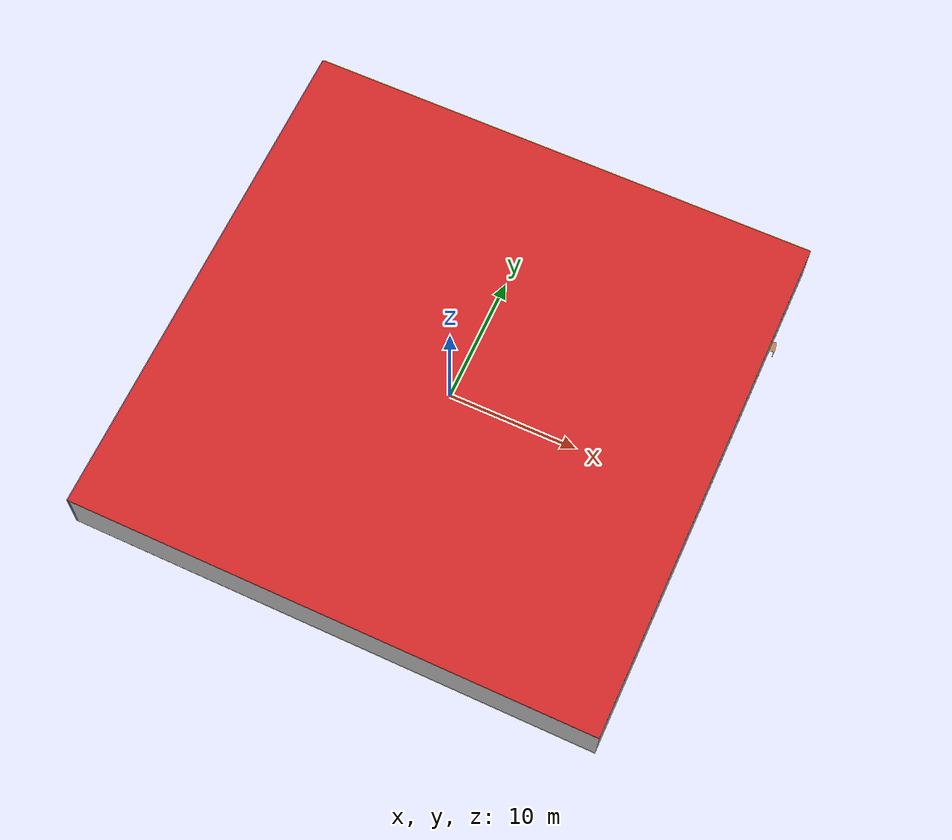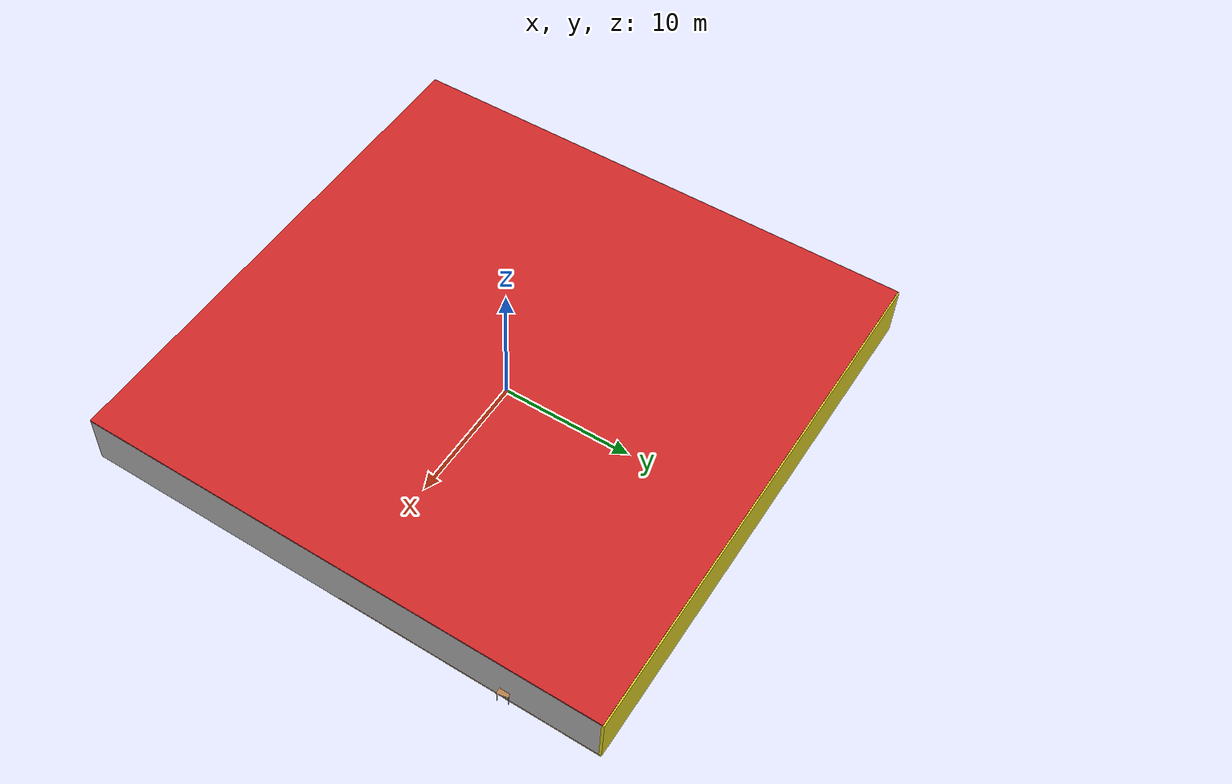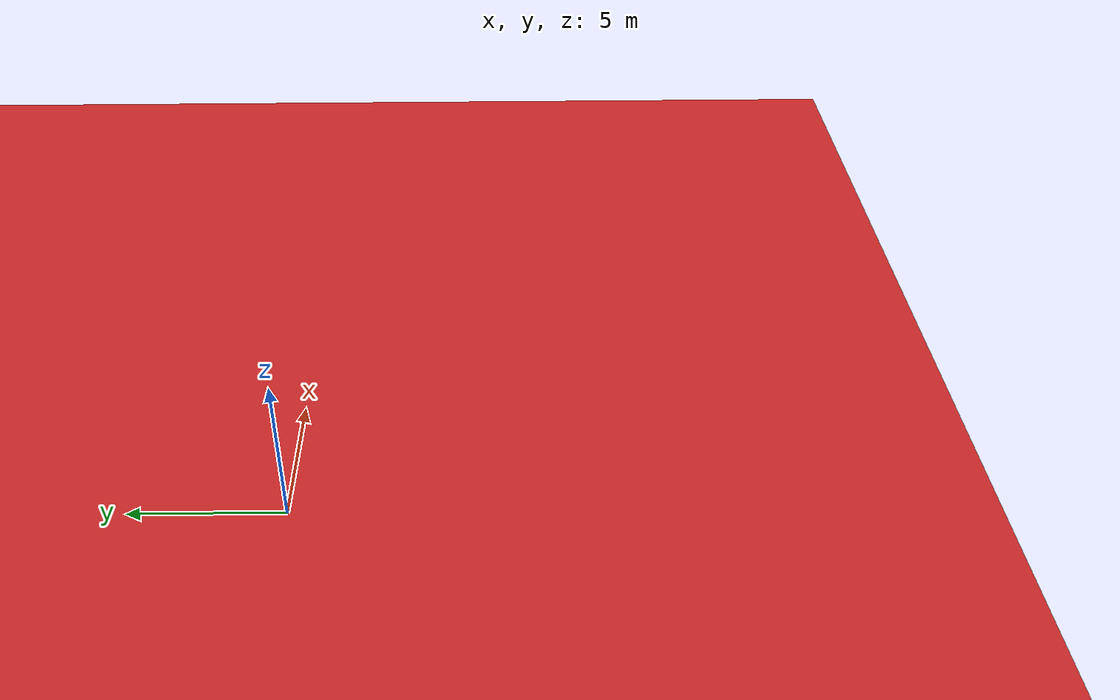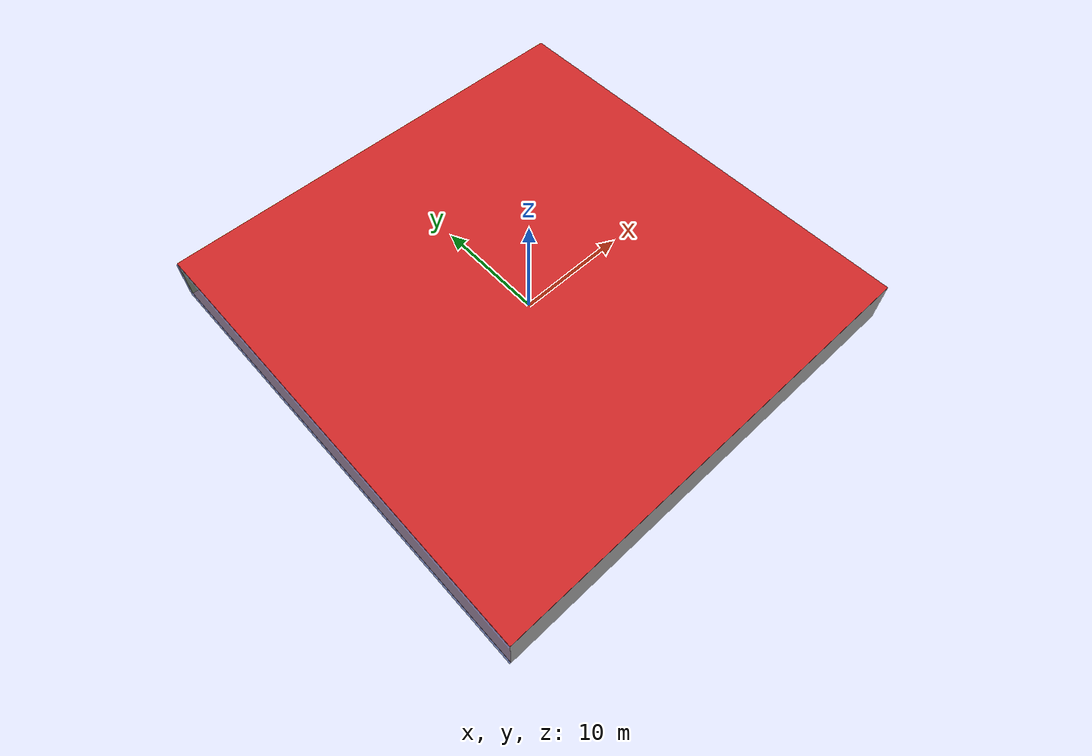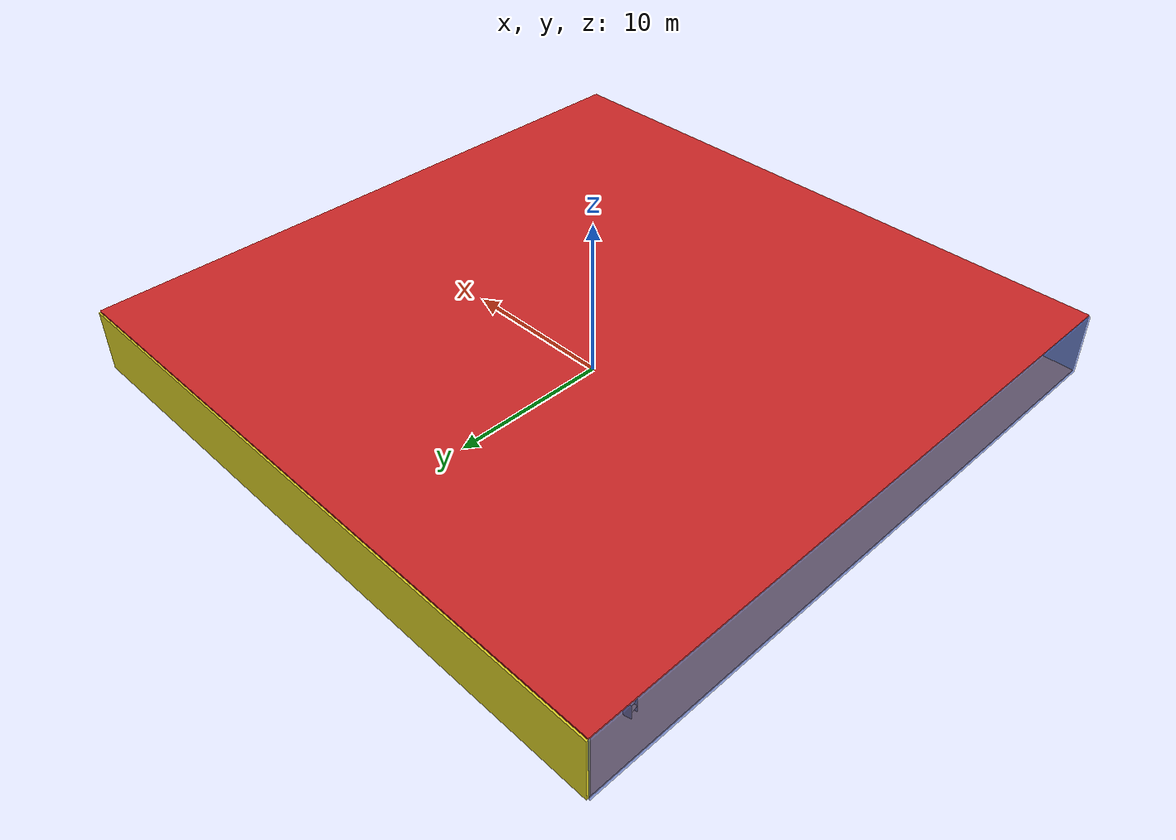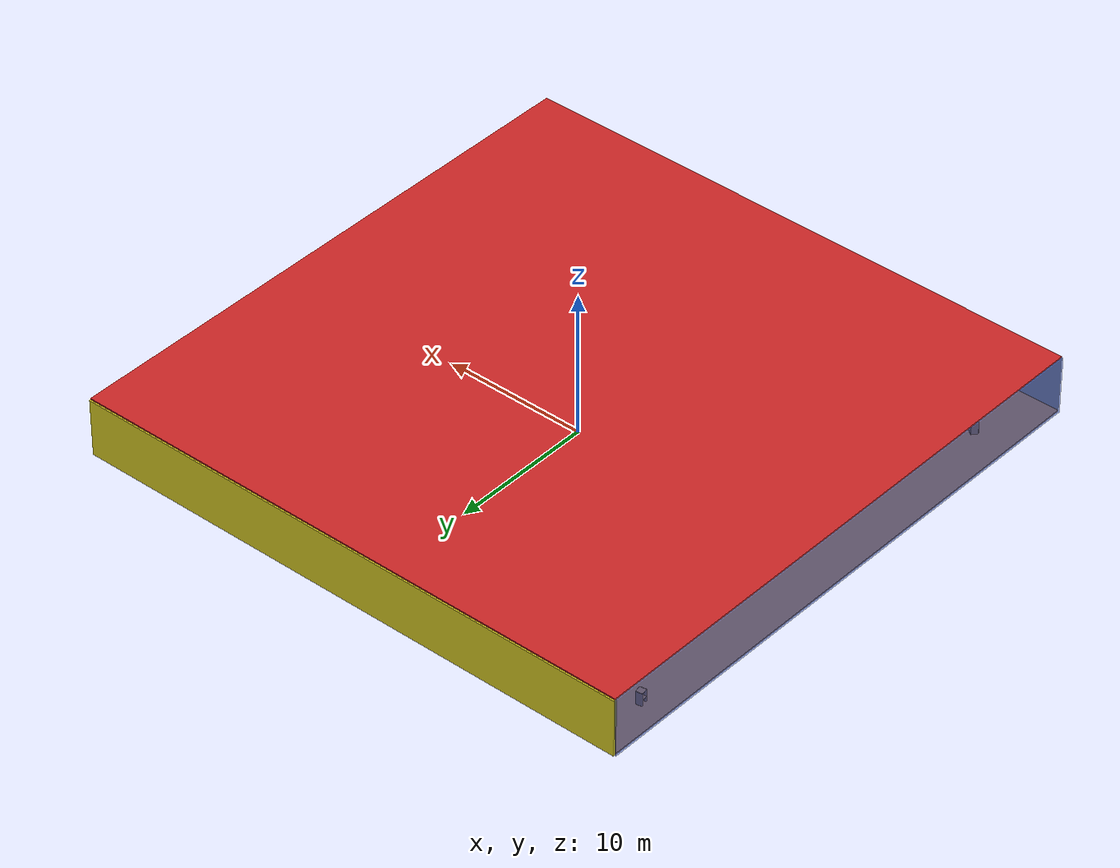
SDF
<sdf version="1.4">
 <world name="default">
  <physics type="ode">
   <max_step_size>0.001</max_step_size>
   <real_time_factor>1</real_time_factor>
   <real_time_update_rate>1000</real_time_update_rate>
   <gravity>0 0 -9.8</gravity>
  </physics>
  <scene><ambient>0.4 0.4 0.4 1</ambient><background>0.7 0.7 0.7 1</background><shadows>1</shadows></scene>
  <model name="Surrounding">
   <static>1</static>
   <link name="Ceiling">
    <collision name="Ceiling_Collision"><geometry><box><size>40 40 0.1</size></box></geometry></collision>
    <visual name="Ceiling_Visual">
     <geometry><box><size>40 40 0.1</size></box></geometry>
     <material>
      <script><uri>file://media/materials/scripts/gazebo.material</uri><name>Gazebo/Red</name></script>
     </material>
    </visual>
    <pose>0 0 4.05 0 0 0</pose>
   </link>
   <link name="Wall_South">
    <collision name="Wall_South_Collision">
     <geometry><box><size>40 0 4</size></box></geometry>
     <pose>0 0 2 0 -0 0</pose>
    </collision>
    <visual name="Wall_South_Visual">
     <pose>0 0 2 0 -0 0</pose>
     <geometry><box><size>40 0 4</size></box></geometry>
     <material>
      <script><uri>file://media/materials/scripts/gazebo.material</uri><name>Gazebo/LightOn</name></script>
     </material>
    </visual>
    <velocity_decay><linear>0</linear><angular>0</angular></velocity_decay>
    <pose>0 -20 0 0 -0 0</pose>
   </link>
   <link name="Wall_East">
    <collision name="Wall_21_Collision">
     <geometry><box><size>40 0 4</size></box></geometry>
     <pose>0 0 2 0 -0 0</pose>
    </collision>
    <visual name="Wall_21_Visual">
     <pose>0 0 2 0 -0 0</pose>
     <geometry><box><size>40 0 4</size></box></geometry>
     <material>
      <script><uri>file://media/materials/scripts/gazebo.material</uri><name>Gazebo/JointAnchor</name></script>
     </material>
    </visual>
    <velocity_decay><linear>0</linear><angular>0</angular></velocity_decay>
    <pose>20 0 0 0 -0 1.5708</pose>
   </link>
   <link name="Wall_North">
    <collision name="Wall_22_Collision">
     <geometry><box><size>40 0.2 4</size></box></geometry>
     <pose>0 0 2 0 -0 0</pose>
    </collision>
    <visual name="Wall_22_Visual">
     <pose>0 0 2 0 -0 0</pose>
     <geometry><box><size>40 0.2 4</size></box></geometry>
     <material>
      <script><uri>file://media/materials/scripts/gazebo.material</uri><name>Gazebo/YellowGlow</name></script>
     </material>
    </visual>
    <velocity_decay><linear>0</linear><angular>0</angular></velocity_decay>
    <pose>0 20 0 0 -0 0</pose>
   </link>
   <link name="Wall_West">
    <collision name="Wall_23_Collision">
     <geometry><box><size>40 0.2 4</size></box></geometry>
     <pose>0 0 2 0 -0 0</pose>
    </collision>
    <visual name="Wall_23_Visual">
     <pose>0 0 2 0 -0 0</pose>
     <geometry><box><size>40 0.2 4</size></box></geometry>
     <material>
      <script><uri>file://media/materials/scripts/gazebo.material</uri><name>Gazebo/BlueTransparent</name></script>
     </material>
    </visual>
    <velocity_decay><linear>0</linear><angular>0</angular></velocity_decay>
    <pose>-20 0 0 0 0 -1.5708</pose>
   </link>
   <link name="Ground_link">
    <collision name="collision">
     <pose>0 0 .05 0 -0 0</pose>
     <geometry><box><size>40 40 0.1</size></box></geometry>
    </collision>
    <visual name="visual">
     <pose>0 0 .05 0 -0 0</pose>
     <geometry><box><size>40 40 0.1</size></box></geometry>
     <material>
      <script><uri>file://media/materials/scripts/gazebo.material</uri><name>Gazebo/Wood</name></script>
     </material>
    </visual>
   </link>
   <static>1</static>
  </model>
  <spherical_coordinates>
   <surface_model>EARTH_WGS84</surface_model>
   <latitude_deg>0</latitude_deg>
   <longitude_deg>0</longitude_deg>
   <elevation>0</elevation>
   <heading_deg>0</heading_deg>
  </spherical_coordinates>
  <light name="lightball_0" type="diffuse">
   <diffuse>0.8 0.8 0.8 1</diffuse>
   <specular>0.2 0.2 0.2 1</specular>
   <attenuation>
    <range>100</range>
    <constant>0.7</constant>
    <linear>0.01</linear>
    <quadratic>0.001</quadratic>
   </attenuation>
   <direction>-0.5 0.1 -0.9</direction>
   <pose>-18.2919454051 8.833476565 1.22197593995 0 0 0</pose>
  </light>
  <include><uri>model://cabinet</uri><pose>-17.4940789951 -15.1272093776 0 0 0 2.45475456887</pose></include>
  <include><uri>model://cabinet</uri><pose>-18.3422905861 15.8440123784 0 0 0 0.213257735772</pose></include>
  <include><uri>model://table</uri><pose>-13.4463953667 7.65013889585 0 0 0 1.06817635739</pose></include>
  <include>
   <uri>model://textured_shapes</uri>
   <pose>-11.0911877211 -4.97302092619 0 0 0 1.60916564767</pose>
  </include>
  <include><uri>model://cabinet</uri><pose>-8.83679870987 -5.5779721844 0 0 0 1.21048915072</pose></include>
  <include><uri>model://cabinet</uri><pose>-2.14905161816 19.1640485742 0 0 0 1.38742048378</pose></include>
  <include>
   <uri>model://robocup_3Dsim_goal</uri>
   <pose>0.752289308306 -0.0005653101118 0 0 0 2.32657594931</pose>
  </include>
  <include>
   <uri>model://robocup_3Dsim_goal</uri>
   <pose>0.646421663873 10.4847682404 0 0 0 3.09077671788</pose>
  </include>
  <include><uri>model://cabinet</uri><pose>-0.0925691894279 13.393188226 0 0 0 2.44315498825</pose></include>
  <include><uri>model://cabinet</uri><pose>3.81547790164 -12.6443794111 0 0 0 2.662411148</pose></include>
  <include><uri>model://cabinet</uri><pose>3.78827103022 -7.89161802485 0 0 0 1.90116456341</pose></include>
  <include><uri>model://table</uri><pose>3.36295961786 16.1649534944 0 0 0 1.74359301999</pose></include>
  <include>
   <uri>model://robocup_3Dsim_goal</uri>
   <pose>7.04291513539 -12.1573747652 0 0 0 1.18399690641</pose>
  </include>
  <include>
   <uri>model://robocup_3Dsim_goal</uri>
   <pose>5.69626264873 -7.74489157931 0 0 0 0.265127230396</pose>
  </include>
  <include><uri>model://cabinet</uri><pose>5.76496669269 8.62247924299 0 0 0 0.863914030624</pose></include>
  <include>
   <uri>model://textured_shapes</uri>
   <pose>13.4371778469 -11.5322156271 0 0 0 1.62448564658</pose>
  </include>
  <include>
   <uri>model://construction_cone</uri>
   <pose>13.2778138315 3.57032629073 0 0 0 1.08150007279</pose>
  </include>
  <include>
   <uri>model://robocup_3Dsim_goal</uri>
   <pose>15.6507268104 7.22548097851 0 0 0 0.168213080219</pose>
  </include>
  <include><uri>model://table</uri><pose>18.3258350352 -16.4753540829 0 0 0 0.642417727561</pose></include>
  <include><uri>model://table</uri><pose>19.6136564425 13.0206428378 0 0 0 0.194976511457</pose></include>
  <include>
   <uri>model://robocup_3Dsim_goal</uri>
   <pose>18.7582823888 15.0113104251 0 0 0 0.884821602981</pose>
  </include>
 </world>
</sdf>

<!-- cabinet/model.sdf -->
<sdf version="1.5">
  <model name="cabinet">
    <static>true</static>
    <link name="cabinet_bottom_plate">
      <inertial>
        <pose>0 0 -1 0 0 0</pose>
        <inertia>
          <ixx>2.050000</ixx>
          <ixy>0</ixy>
          <ixz>0</ixz>
          <iyy>2.050000</iyy>
          <iyz>0</iyz>
          <izz>2.050000</izz>
        </inertia>
        <mass>25.000000</mass>
      </inertial>
      <collision name="cabinet_bottom_plate_geom">
        <pose>0 0 0.010000 0 0 0</pose>
        <geometry>
          <box>
            <size>0.450000 0.450000 0.020000</size>
          </box>
        </geometry>
      </collision>
      <visual name="cabinet_bottom_plate_geom_visual">
        <pose>0 0 0.010000 0 0 0</pose>
        <geometry>
          <box>
            <size>0.450000 0.450000 0.020000</size>
          </box>
        </geometry>
        <material>
          <script>
            <uri>model://media/materials/scripts/gazebo.material</uri>
            <name>Gazebo/Wood</name>
          </script>
        </material>
      </visual>
      <collision name="cabinet_bottom_plate_geom_cabinet_back_plate">
        <pose>0.235000 0 0.510000 0 0 0</pose>
        <geometry>
          <box>
            <size>0.020000 0.450000 1.020000</size>
          </box>
        </geometry>
      </collision>
      <visual name="cabinet_bottom_plate_geom_cabinet_back_plate_visual">
        <pose>0.235000 0 0.510000 0 0 0</pose>
        <geometry>
          <box>
            <size>0.020000 0.450000 1.020000</size>
          </box>
        </geometry>
        <material>
          <script>
            <uri>model://media/materials/scripts/gazebo.material</uri>
            <name>Gazebo/Wood</name>
          </script>
        </material>
      </visual>
      <collision name="cabinet_bottom_plate_geom_cabinet_left_plate">
        <pose>0 0.235000 0.510000 0 0 0</pose>
        <geometry>
          <box>
            <size>0.450000 0.020000 1.020000</size>
          </box>
        </geometry>
      </collision>
      <visual name="cabinet_bottom_plate_geom_cabinet_left_plate_visual">
        <pose>0 0.235000 0.510000 0 0 0</pose>
        <geometry>
          <box>
            <size>0.450000 0.020000 1.020000</size>
          </box>
        </geometry>
        <material>
          <script>
            <uri>model://media/materials/scripts/gazebo.material</uri>
            <name>Gazebo/Wood</name>
          </script>
        </material>
      </visual>
      <collision name="cabinet_bottom_plate_geom_cabinet_middle_plate">
        <pose>0 0 0.510000 0 0 0</pose>
        <geometry>
          <box>
            <size>0.450000 0.450000 0.020000</size>
          </box>
        </geometry>
      </collision>
      <visual name="cabinet_bottom_plate_geom_cabinet_middle_plate_visual">
        <pose>0 0 0.510000 0 0 0</pose>
        <geometry>
          <box>
            <size>0.450000 0.450000 0.020000</size>
          </box>
        </geometry>
        <material>
          <script>
            <uri>model://media/materials/scripts/gazebo.material</uri>
            <name>Gazebo/Wood</name>
          </script>
        </material>
      </visual>
      <collision name="cabinet_bottom_plate_geom_cabinet_right_plate">
        <pose>0 -0.235000 0.510000 0 0 0</pose>
        <geometry>
          <box>
            <size>0.450000 0.020000 1.020000</size>
          </box>
        </geometry>
      </collision>
      <visual name="cabinet_bottom_plate_geom_cabinet_right_plate_visual">
        <pose>0 -0.235000 0.510000 0 0 0</pose>
        <geometry>
          <box>
            <size>0.450000 0.020000 1.020000</size>
          </box>
        </geometry>
        <material>
          <script>
            <uri>model://media/materials/scripts/gazebo.material</uri>
            <name>Gazebo/Wood</name>
          </script>
        </material>
      </visual>
      <collision name="cabinet_bottom_plate_geom_cabinet_top_plate">
        <pose>0 0 1.010000 0 0 0</pose>
        <geometry>
          <box>
            <size>0.450000 0.450000 0.020000</size>
          </box>
        </geometry>
      </collision>
      <visual name="cabinet_bottom_plate_geom_cabinet_top_plate_visual">
        <pose>0 0 1.010000 0 0 0</pose>
        <geometry>
          <box>
            <size>0.450000 0.450000 0.020000</size>
          </box>
        </geometry>
        <material>
          <script>
            <uri>model://media/materials/scripts/gazebo.material</uri>
            <name>Gazebo/Wood</name>
          </script>
        </material>
      </visual>
    </link>
  </model>
</sdf>

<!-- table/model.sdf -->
<sdf version="1.5">
  <model name="table">
    <static>true</static>
    <link name="link">
      <collision name="surface">
        <pose>0 0 1.0 0 0 0</pose>
        <geometry>
          <box>
            <size>1.5 0.8 0.03</size>
          </box>
        </geometry>
        <surface>
          <friction>
            <ode>
              <mu>0.6</mu>
              <mu2>0.6</mu2>
            </ode>
          </friction>
        </surface>
      </collision>
      <visual name="visual1">
        <pose>0 0 1.0 0 0 0</pose>
        <geometry>
          <box>
            <size>1.5 0.8 0.03</size>
          </box>
        </geometry>
        <material>
          <script>
            <uri>model://media/materials/scripts/gazebo.material</uri>
            <name>Gazebo/Wood</name>
          </script>
        </material>
      </visual>
      <collision name="front_left_leg">
        <pose>0.68 0.38 0.5 0 0 0</pose>
        <geometry>
          <cylinder>
            <radius>0.02</radius>
            <length>1.0</length>
          </cylinder>
        </geometry>
      </collision>
      <visual name="front_left_leg">
        <pose>0.68 0.38 0.5 0 0 0</pose>
        <geometry>
          <cylinder>
            <radius>0.02</radius>
            <length>1.0</length>
          </cylinder>
        </geometry>
        <material>
          <script>
            <uri>model://media/materials/scripts/gazebo.material</uri>
            <name>Gazebo/Grey</name>
          </script>
        </material>
      </visual>
      <collision name="front_right_leg">
        <pose>0.68 -0.38 0.5 0 0 0</pose>
        <geometry>
          <cylinder>
            <radius>0.02</radius>
            <length>1.0</length>
          </cylinder>
        </geometry>
      </collision>
      <visual name="front_right_leg">
        <pose>0.68 -0.38 0.5 0 0 0</pose>
        <geometry>
          <cylinder>
            <radius>0.02</radius>
            <length>1.0</length>
          </cylinder>
        </geometry>
        <material>
          <script>
            <uri>model://media/materials/scripts/gazebo.material</uri>
            <name>Gazebo/Grey</name>
          </script>
        </material>
      </visual>
      <collision name="back_right_leg">
        <pose>-0.68 -0.38 0.5 0 0 0</pose>
        <geometry>
          <cylinder>
            <radius>0.02</radius>
            <length>1.0</length>
          </cylinder>
        </geometry>
      </collision>
      <visual name="back_right_leg">
        <pose>-0.68 -0.38 0.5 0 0 0</pose>
        <geometry>
          <cylinder>
            <radius>0.02</radius>
            <length>1.0</length>
          </cylinder>
        </geometry>
        <material>
          <script>
            <uri>model://media/materials/scripts/gazebo.material</uri>
            <name>Gazebo/Grey</name>
          </script>
        </material>
      </visual>
      <collision name="back_left_leg">
        <pose>-0.68 0.38 0.5 0 0 0</pose>
        <geometry>
          <cylinder>
            <radius>0.02</radius>
            <length>1.0</length>
          </cylinder>
        </geometry>
      </collision>
      <visual name="back_left_leg">
        <pose>-0.68 0.38 0.5 0 0 0</pose>
        <geometry>
          <cylinder>
            <radius>0.02</radius>
            <length>1.0</length>
          </cylinder>
        </geometry>
        <material>
          <script>
            <uri>model://media/materials/scripts/gazebo.material</uri>
            <name>Gazebo/Grey</name>
          </script>
        </material>
      </visual>
    </link>
  </model>
</sdf>

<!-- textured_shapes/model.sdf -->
<sdf version="1.6">
  <model name="textured_shapes">
    <pose>0 0 0.5 0 0 0</pose>
    <link name="box">
      <pose>0 -1.5 0 0 0 0</pose>
      <collision name="collision">
        <geometry>
          <box>
            <size>1 1 1</size>
          </box>
        </geometry>
      </collision>
      <visual name="visual">
        <geometry>
          <box>
            <size>1 1 1</size>
          </box>
        </geometry>
        <material>
          <script>
            <uri>model://../model_source/models/textured_shapes/materials/scripts</uri>
            <uri>model://../model_source/models/textured_shapes/materials/textures</uri>
            <name>TexturedShape/Squares</name>
          </script>
        </material>
      </visual>
    </link>
    <link name="sphere">
      <collision name="collision">
        <geometry>
          <sphere>
            <radius>0.5</radius>
          </sphere>
        </geometry>
      </collision>
      <visual name="visual">
        <geometry>
          <sphere>
            <radius>0.5</radius>
          </sphere>
        </geometry>
        <material>
          <script>
            <uri>model://../model_source/models/textured_shapes/materials/scripts</uri>
            <uri>model://../model_source/models/textured_shapes/materials/textures</uri>
            <name>TexturedShape/Squares</name>
          </script>
        </material>
      </visual>
    </link>
    <link name="cylinder">
      <pose>0 1.5 0 0 0 0</pose>
      <collision name="collision">
        <geometry>
          <cylinder>
            <radius>0.5</radius>
            <length>1</length>
          </cylinder>
        </geometry>
      </collision>
      <visual name="visual">
        <geometry>
          <cylinder>
            <radius>0.5</radius>
            <length>1</length>
          </cylinder>
        </geometry>
        <material>
          <script>
            <uri>model://../model_source/models/textured_shapes/materials/scripts</uri>
            <uri>model://../model_source/models/textured_shapes/materials/textures</uri>
            <name>TexturedShape/Squares</name>
          </script>
        </material>
      </visual>
    </link>
  </model>
</sdf>

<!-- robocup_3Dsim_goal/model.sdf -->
<sdf version="1.5">
  <model name="robocup_3d_goal">
    <static>true</static>
    <link name="left_post">
      <pose>0 1.05 0.45 0 0 0</pose>
      <collision name="collision">
        <geometry>
          <cylinder>
            <radius>0.05</radius>
            <length>0.9</length>
          </cylinder>
        </geometry>
      </collision>
      <visual name="visual">
        <geometry>
          <cylinder>
            <radius>0.05</radius>
            <length>0.9</length>
          </cylinder>
        </geometry>
        <material>
          <script>
            <uri>file://media/materials/scripts/gazebo.material</uri>
            <name>Gazebo/ZincYellow</name>
          </script>
        </material>
      </visual>
    </link>
    <link name="left_support_horiz_lower">
      <pose>0.30 1.05 0.01 0 0 0</pose>
      <collision name="collision">
        <geometry>
          <box>
            <size>0.50 0.02 0.02</size>
          </box>
        </geometry>
      </collision>
      <visual name="visual">
        <geometry>
          <box>
            <size>0.50 0.02 0.02</size>
          </box>
        </geometry>
        <material>
          <script>
            <uri>file://media/materials/scripts/gazebo.material</uri>
            <name>Gazebo/White</name>
          </script>
        </material>
      </visual>
    </link>
    <link name="left_support_horiz_upper">
      <pose>0.30 1.05 0.79 0 0 0</pose>
      <collision name="collision">
        <geometry>
          <box>
            <size>0.50 0.02 0.02</size>
          </box>
        </geometry>
      </collision>
      <visual name="visual">
        <geometry>
          <box>
            <size>0.50 0.02 0.02</size>
          </box>
        </geometry>
        <material>
          <script>
            <uri>file://media/materials/scripts/gazebo.material</uri>
            <name>Gazebo/White</name>
          </script>
        </material>
      </visual>
    </link>
    <link name="left_support_vertical">
      <pose>0.56 1.05 0.4 0 1.5708 0</pose>
      <collision name="collision">
        <geometry>
          <box>
            <size>0.80 0.02 0.02</size>
          </box>
        </geometry>
      </collision>
      <visual name="visual">
        <geometry>
          <box>
            <size>0.80 0.02 0.02</size>
          </box>
        </geometry>
        <material>
          <script>
            <uri>file://media/materials/scripts/gazebo.material</uri>
            <name>Gazebo/White</name>
          </script>
        </material>
      </visual>
    </link>
    <link name="right_support_horiz_lower">
      <pose>0.30 -1.05 0.01 0 0 0</pose>
      <collision name="collision">
        <geometry>
          <box>
            <size>0.50 0.02 0.02</size>
          </box>
        </geometry>
      </collision>
      <visual name="visual">
        <geometry>
          <box>
            <size>0.50 0.02 0.02</size>
          </box>
        </geometry>
        <material>
          <script>
            <uri>file://media/materials/scripts/gazebo.material</uri>
            <name>Gazebo/White</name>
          </script>
        </material>
      </visual>
    </link>
    <link name="right_support_horiz_upper">
      <pose>0.30 -1.05 0.79 0 0 0</pose>
      <collision name="collision">
        <geometry>
          <box>
            <size>0.50 0.02 0.02</size>
          </box>
        </geometry>
      </collision>
      <visual name="visual">
        <geometry>
          <box>
            <size>0.50 0.02 0.02</size>
          </box>
        </geometry>
        <material>
          <script>
            <uri>file://media/materials/scripts/gazebo.material</uri>
            <name>Gazebo/White</name>
          </script>
        </material>
      </visual>
    </link>
    <link name="right_support_vertical">
      <pose>0.56 -1.05 0.4 0 1.5708 0</pose>
      <collision name="collision">
        <geometry>
          <box>
            <size>0.80 0.02 0.02</size>
          </box>
        </geometry>
      </collision>
      <visual name="visual">
        <geometry>
          <box>
            <size>0.80 0.02 0.02</size>
          </box>
        </geometry>
        <material>
          <script>
            <uri>file://media/materials/scripts/gazebo.material</uri>
            <name>Gazebo/White</name>
          </script>
        </material>
      </visual>
    </link>
    <link name="center_support_horiz_lower">
      <pose>0.56 0 0.01 0 1.5708 0</pose>
      <collision name="collision">
        <geometry>
          <box>
            <size>0.02 2.08 0.02</size>
          </box>
        </geometry>
      </collision>
      <visual name="visual">
        <geometry>
          <box>
            <size>0.02 2.08 0.02</size>
          </box>
        </geometry>
        <material>
          <script>
            <uri>file://media/materials/scripts/gazebo.material</uri>
            <name>Gazebo/White</name>
          </script>
        </material>
      </visual>
    </link>
    <link name="center_support_horiz_upper">
      <pose>0.56 0 0.79 0 1.5708 0</pose>
      <collision name="collision">
        <geometry>
          <box>
            <size>0.02 2.08 0.02</size>
          </box>
        </geometry>
      </collision>
      <visual name="visual">
        <geometry>
          <box>
            <size>0.02 2.08 0.02</size>
          </box>
        </geometry>
        <material>
          <script>
            <uri>file://media/materials/scripts/gazebo.material</uri>
            <name>Gazebo/White</name>
          </script>
        </material>
      </visual>
    </link>
    <link name="right_post">
      <pose>0 -1.05 0.45 0 0 0</pose>
      <collision name="collision">
        <geometry>
          <cylinder>
            <radius>0.05</radius>
            <length>0.9</length>
          </cylinder>
        </geometry>
      </collision>
      <visual name="visual">
        <geometry>
          <cylinder>
            <radius>0.05</radius>
            <length>0.9</length>
          </cylinder>
        </geometry>
        <material>
          <script>
            <uri>file://media/materials/scripts/gazebo.material</uri>
            <name>Gazebo/ZincYellow</name>
          </script>
        </material>
      </visual>
    </link>
    <link name="crossbar">
      <pose>0 0 0.85 1.57 1.57 0</pose>
      <collision name="collision">
        <geometry>
          <cylinder>
            <radius>0.05</radius>
            <length>2.0</length>
          </cylinder>
        </geometry>
      </collision>
      <visual name="visual">
        <geometry>
          <cylinder>
            <radius>0.05</radius>
            <length>2.0</length>
          </cylinder>
        </geometry>
        <material>
          <script>
            <uri>file://media/materials/scripts/gazebo.material</uri>
            <name>Gazebo/ZincYellow</name>
          </script>
        </material>
      </visual>
    </link>
    <link name="center_net">
      <pose>0.56 0 0.40 0 0 0</pose>
      <collision name="collision">
        <geometry>
          <box>
            <size>0.01 2.1 0.80</size>
          </box>
        </geometry>
      </collision>
      <visual name="visual">
        <geometry>
          <box>
            <size>0.01 2.1 0.80</size>
          </box>
        </geometry>
        <material>
          <script>
            <uri>model://../model_source/models/robocup09_spl_field/materials/scripts/</uri>
            <uri>model://../model_source/models/robocup09_spl_field/materials/textures/</uri>
            <name>RoboCup/Net</name>
          </script>
        </material>
      </visual>
    </link>
    <link name="left_net">
      <pose>0.30 1.05 0.40 0 0 0</pose>
      <collision name="collision">
        <geometry>
          <box>
            <size>0.50 0.01 0.76</size>
          </box>
        </geometry>
      </collision>
      <visual name="visual">
        <geometry>
          <box>
            <size>0.50 0.01 0.76</size>
          </box>
        </geometry>
        <material>
          <script>
            <uri>model://../model_source/models/robocup09_spl_field/materials/scripts/</uri>
            <uri>model://../model_source/models/robocup09_spl_field/materials/textures/</uri>
            <name>RoboCup/Net</name>
          </script>
        </material>
      </visual>
    </link>
    <link name="right_net">
      <pose>0.30 -1.05 0.40 0 0 0</pose>
      <collision name="collision">
        <geometry>
          <box>
            <size>0.50 0.01 0.76</size>
          </box>
        </geometry>
      </collision>
      <visual name="visual">
        <geometry>
          <box>
            <size>0.50 0.01 0.76</size>
          </box>
        </geometry>
        <material>
          <script>
            <uri>model://../model_source/models/robocup09_spl_field/materials/scripts/</uri>
            <uri>model://../model_source/models/robocup09_spl_field/materials/textures/</uri>
            <name>RoboCup/Net</name>
          </script>
        </material>
      </visual>
    </link>
  </model>
</sdf>

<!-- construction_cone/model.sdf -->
<sdf version="1.5">
  <model name="Construction Cone">
    <link name="link">
      <collision name="collision">
        <geometry>
          <mesh>
            <scale>10 10 10</scale>
            <uri>file://isr-testbed/construction_cone/meshes/construction_cone.dae</uri>
          </mesh>
        </geometry>
      </collision>
      <visual name="visual">
        <geometry>
          <mesh>
            <scale>10 10 10</scale>
            <uri>file://isr-testbed/construction_cone/meshes/construction_cone.dae</uri>
          </mesh>
        </geometry>
      </visual>
    </link>
  </model>
</sdf>
